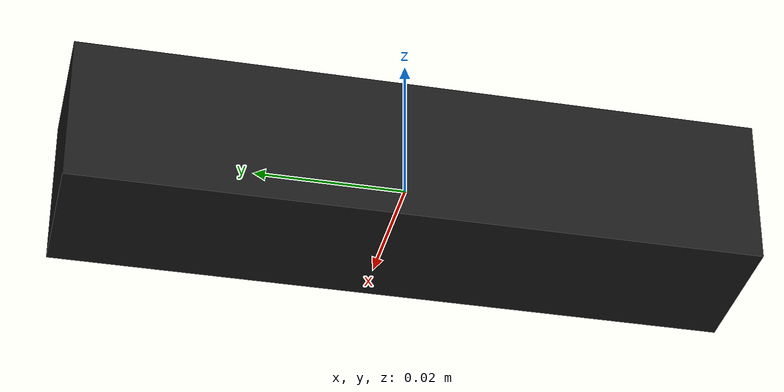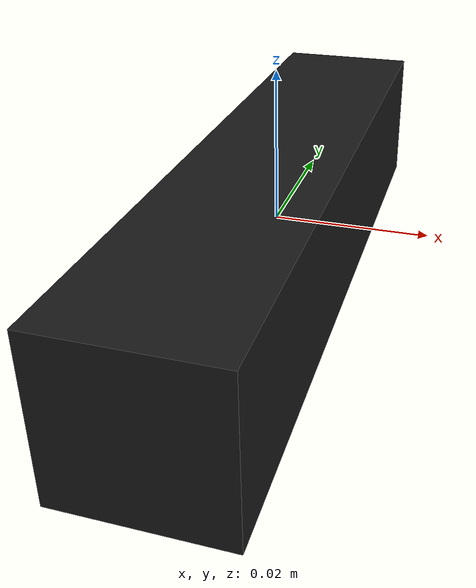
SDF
<?xml version="1.0" encoding="UTF-8"?>
<sdf version='1.9'>
  <model name='stereo_cam'>
    <link name='stereo_cam/base_link'>
      <inertial>
        <mass>0.02</mass>
        <inertia>
          <ixx>1.0e-5</ixx>
          <iyy>1.0e-5</iyy>
          <izz>1.0e-5</izz>
          <ixy>0.0</ixy>
          <ixz>0.0</ixz>
          <iyz>0.0</iyz>
        </inertia>
      </inertial>
      <visual name='housing'>
        <geometry>
          <box><size>0.02 0.09 0.02</size></box>
        </geometry>
        <material>
          <ambient>0.05 0.05 0.05 1</ambient>
          <diffuse>0.1 0.1 0.1 1</diffuse>
        </material>
      </visual>

      <sensor name='cam0' type='camera'>
        <pose>0 -0.025 0 -1.5707963 0 -1.5707963</pose>
        <topic>/vio_cam0/image</topic>
        <camera>
          <horizontal_fov>1.5184</horizontal_fov>
          <image>
            <width>640</width>
            <height>480</height>
            <format>L_INT8</format>
          </image>
          <clip>
            <near>0.05</near>
            <far>100</far>
          </clip>
          <noise>
            <type>gaussian</type>
            <mean>0.0</mean>
            <stddev>0.007</stddev>
          </noise>
        </camera>
        <always_on>1</always_on>
        <update_rate>30</update_rate>
        <visualize>false</visualize>
      </sensor>

      <sensor name='cam1' type='camera'>
        <pose>0 0.025 0 -1.5707963 0 -1.5707963</pose>
        <topic>/vio_cam1/image</topic>
        <camera>
          <horizontal_fov>1.5184</horizontal_fov>
          <image>
            <width>640</width>
            <height>480</height>
            <format>L_INT8</format>
          </image>
          <clip>
            <near>0.05</near>
            <far>100</far>
          </clip>
          <noise>
            <type>gaussian</type>
            <mean>0.0</mean>
            <stddev>0.007</stddev>
          </noise>
        </camera>
        <always_on>1</always_on>
        <update_rate>30</update_rate>
        <visualize>false</visualize>
      </sensor>
    </link>
  </model>
</sdf>
